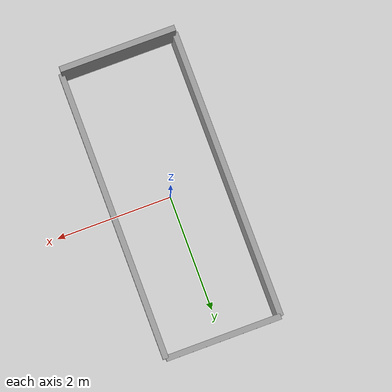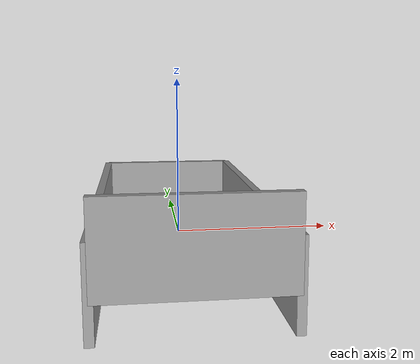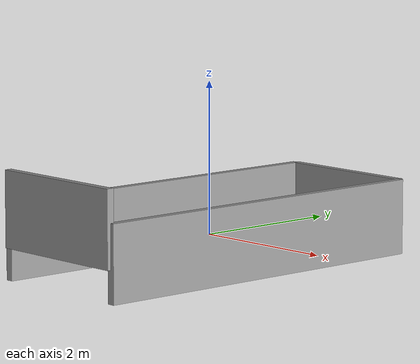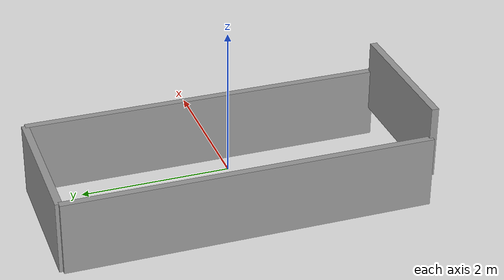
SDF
<?xml version="1.0" ?>
<sdf version="1.7">
    <model name="walls">
        <static>true</static>
        <link name="all_walls">
            <collision name="right_wall">
                <pose>1 0 0.075 0 0 0</pose>
                <geometry>
                    <box>
                        <size>0.1 5 1</size>
                    </box>
                </geometry>
            </collision>
            <visual name="right_wall">
                <pose>1 0 0.075 0 0 0</pose>
                <geometry>
                    <box>
                        <size>0.1 5 1</size>
                    </box>
                </geometry>
                <material>
                    <script>
                        <uri>file://media/materials/scripts/gazebo.material</uri>
                        <name>Gazebo/Grey</name>
                    </script>
                </material>
            </visual>
            <collision name="left_wall">
                <pose>-1 0 0.075 0 0 0</pose>
                <geometry>
                    <box>
                        <size>0.1 5 1</size>
                    </box>
                </geometry>
            </collision>
            <visual name="left_wall">
                <pose>-1 0 0.075 0 0 0</pose>
                <geometry>
                    <box>
                        <size>0.1 5 1</size>
                    </box>
                </geometry>
                <material>
                    <script>
                        <uri>file://media/materials/scripts/gazebo.material</uri>
                        <name>Gazebo/Grey</name>
                    </script>
                </material>
            </visual>
            <collision name="front_wall">
                <pose>0 2.5 0.075 0 0 0</pose>
                <geometry>
                    <box>
                        <size>2 0.1 1</size>
                    </box>
                </geometry>
            </collision>
            <visual name="front_wall">
                <pose>0 2.5 0.075 0 0 0</pose>
                <geometry>
                    <box>
                        <size>2 0.1 1</size>
                    </box>
                </geometry>
                <material>
                    <script>
                        <uri>file://media/materials/scripts/gazebo.material</uri>
                        <name>Gazebo/Grey</name>
                    </script>
                </material>
            </visual>
            <collision name="back_wall">
                <pose>0 -2.5 0.5 0 0 0</pose>
                <geometry>
                    <box>
                        <size>2 0.1 1</size>
                    </box>
                </geometry>
            </collision>
            <visual name="back_wall">
                <pose>0 -2.5 0.5 0 0 0</pose>
                <geometry>
                    <box>
                        <size>2 0.1 1</size>
                    </box>
                </geometry>
                <material>
                    <script>
                        <uri>file://media/materials/scripts/gazebo.material</uri>
                        <name>Gazebo/Grey</name>
                    </script>
                </material>
            </visual>
        </link>
    </model>
</sdf>
